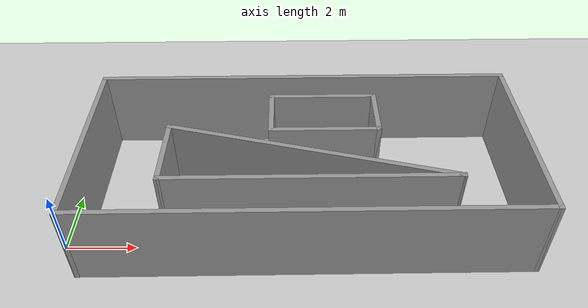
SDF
<sdf version="1.7">
 <world name="default">
  <light name="sun" type="directional">
   <pose>0 0 10 0 -0 0</pose>
   <diffuse>0.8 0.8 0.8 1</diffuse>
   <specular>0.2 0.2 0.2 1</specular>
   <attenuation>
    <range>1000</range>
    <constant>0.9</constant>
    <linear>0.01</linear>
    <quadratic>0.001</quadratic>
   </attenuation>
   <direction>-0.5 0.1 -0.9</direction>
   <spot><inner_angle>0</inner_angle><outer_angle>0</outer_angle><falloff>0</falloff></spot>
  </light>
  <model name="ground_plane">
   <static>1</static>
   <link name="link">
    <collision name="collision">
     <geometry><plane><normal>0 0 1</normal><size>100 100</size></plane></geometry>
     <surface><friction><ode><mu>100</mu><mu2>50</mu2></ode></friction></surface>
    </collision>
    <visual name="visual">
     <cast_shadows>0</cast_shadows>
     <geometry><plane><normal>0 0 1</normal><size>100 100</size></plane></geometry>
     <material>
      <script><uri>file://media/materials/scripts/gazebo.material</uri><name>Gazebo/Grey</name></script>
     </material>
    </visual>
   </link>
  </model>
  <gravity>0 0 -9.8</gravity>
  <magnetic_field>6e-06 2.3e-05 -4.2e-05</magnetic_field>
  <atmosphere type="adiabatic"/>
  <physics type="ode">
   <max_step_size>0.001</max_step_size>
   <real_time_factor>1</real_time_factor>
   <real_time_update_rate>1000</real_time_update_rate>
  </physics>
  <scene><ambient>0.4 0.4 0.4 1</ambient><background>0.7 0.7 0.7 1</background><shadows>1</shadows></scene>
  <audio><device>default</device></audio>
  <spherical_coordinates>
   <surface_model>EARTH_WGS84</surface_model>
   <latitude_deg>0</latitude_deg>
   <longitude_deg>0</longitude_deg>
   <elevation>0</elevation>
   <heading_deg>0</heading_deg>
  </spherical_coordinates>
  <model name="labirint2">
   <pose>6.86557 2.38647 0 0 -0 0</pose>
   <link name="Wall_0">
    <collision name="Wall_0_Collision">
     <geometry><box><size>6 0.15 2.5</size></box></geometry>
     <pose>0 0 1.25 0 -0 0</pose>
    </collision>
    <visual name="Wall_0_Visual">
     <pose>0 0 1.25 0 -0 0</pose>
     <geometry><box><size>6 0.15 2.5</size></box></geometry>
     <material>
      <script><uri>file://media/materials/scripts/gazebo.material</uri><name>Gazebo/Grey</name></script>
      <ambient>1 1 1 1</ambient>
     </material>
     <meta><layer>0</layer></meta>
    </visual>
    <pose>-6.3 -0.4175 0 0 -0 -1.5708</pose>
   </link>
   <link name="Wall_1">
    <collision name="Wall_1_Collision">
     <geometry><box><size>12.75 0.15 2.5</size></box></geometry>
     <pose>0 0 1.25 0 -0 0</pose>
    </collision>
    <visual name="Wall_1_Visual">
     <pose>0 0 1.25 0 -0 0</pose>
     <geometry><box><size>12.75 0.15 2.5</size></box></geometry>
     <material>
      <script><uri>file://media/materials/scripts/gazebo.material</uri><name>Gazebo/Grey</name></script>
      <ambient>1 1 1 1</ambient>
     </material>
     <meta><layer>0</layer></meta>
    </visual>
    <pose>0 -3.3425 0 0 -0 0</pose>
   </link>
   <link name="Wall_10">
    <collision name="Wall_10_Collision">
     <geometry><box><size>3.25 0.15 2.5</size></box></geometry>
     <pose>0 0 1.25 0 -0 0</pose>
    </collision>
    <visual name="Wall_10_Visual">
     <pose>0 0 1.25 0 -0 0</pose>
     <geometry><box><size>3.25 0.15 2.5</size></box></geometry>
     <material>
      <script><uri>file://media/materials/scripts/gazebo.material</uri><name>Gazebo/Grey</name></script>
      <ambient>1 1 1 1</ambient>
     </material>
     <meta><layer>0</layer></meta>
    </visual>
    <pose>0.56 -0.1525 0 0 -0 0</pose>
   </link>
   <link name="Wall_11">
    <collision name="Wall_11_Collision">
     <geometry><box><size>1.75 0.15 2.5</size></box></geometry>
     <pose>0 0 1.25 0 -0 0</pose>
    </collision>
    <visual name="Wall_11_Visual">
     <pose>0 0 1.25 0 -0 0</pose>
     <geometry><box><size>1.75 0.15 2.5</size></box></geometry>
     <material>
      <script><uri>file://media/materials/scripts/gazebo.material</uri><name>Gazebo/Grey</name></script>
      <ambient>1 1 1 1</ambient>
     </material>
     <meta><layer>0</layer></meta>
    </visual>
    <pose>2.11 0.6475 0 0 -0 1.5708</pose>
   </link>
   <link name="Wall_12">
    <collision name="Wall_12_Collision">
     <geometry><box><size>3.25 0.15 2.5</size></box></geometry>
     <pose>0 0 1.25 0 -0 0</pose>
    </collision>
    <visual name="Wall_12_Visual">
     <pose>0 0 1.25 0 -0 0</pose>
     <geometry><box><size>3.25 0.15 2.5</size></box></geometry>
     <material>
      <script><uri>file://media/materials/scripts/gazebo.material</uri><name>Gazebo/Grey</name></script>
      <ambient>1 1 1 1</ambient>
     </material>
     <meta><layer>0</layer></meta>
    </visual>
    <pose>0.56 1.4475 0 0 -0 3.14159</pose>
   </link>
   <link name="Wall_2">
    <collision name="Wall_2_Collision">
     <geometry><box><size>6 0.15 2.5</size></box></geometry>
     <pose>0 0 1.25 0 -0 0</pose>
    </collision>
    <visual name="Wall_2_Visual">
     <pose>0 0 1.25 0 -0 0</pose>
     <geometry><box><size>6 0.15 2.5</size></box></geometry>
     <material>
      <script><uri>file://media/materials/scripts/gazebo.material</uri><name>Gazebo/Grey</name></script>
      <ambient>1 1 1 1</ambient>
     </material>
     <meta><layer>0</layer></meta>
    </visual>
    <pose>6.3 -0.4175 0 0 -0 1.5708</pose>
   </link>
   <link name="Wall_3">
    <collision name="Wall_3_Collision">
     <geometry><box><size>12.75 0.15 2.5</size></box></geometry>
     <pose>0 0 1.25 0 -0 0</pose>
    </collision>
    <visual name="Wall_3_Visual">
     <pose>0 0 1.25 0 -0 0</pose>
     <geometry><box><size>12.75 0.15 2.5</size></box></geometry>
     <material>
      <script><uri>file://media/materials/scripts/gazebo.material</uri><name>Gazebo/Grey</name></script>
      <ambient>1 1 1 1</ambient>
     </material>
     <meta><layer>0</layer></meta>
    </visual>
    <pose>0 2.5075 0 0 -0 3.14159</pose>
   </link>
   <link name="Wall_5">
    <collision name="Wall_5_Collision">
     <geometry><box><size>8.25 0.15 2.5</size></box></geometry>
     <pose>0 0 1.25 0 -0 0</pose>
    </collision>
    <visual name="Wall_5_Visual">
     <pose>0 0 1.25 0 -0 0</pose>
     <geometry><box><size>8.25 0.15 2.5</size></box></geometry>
     <material>
      <script><uri>file://media/materials/scripts/gazebo.material</uri><name>Gazebo/Grey</name></script>
      <ambient>1 1 1 1</ambient>
     </material>
     <meta><layer>0</layer></meta>
    </visual>
    <pose>0.09 -2.1325 0 0 -0 0</pose>
   </link>
   <link name="Wall_6">
    <collision name="Wall_6_Collision">
     <geometry><box><size>8.5 0.15 2.5</size></box></geometry>
     <pose>0 0 1.25 0 -0 0</pose>
    </collision>
    <visual name="Wall_6_Visual">
     <pose>0 0 1.25 0 -0 0</pose>
     <geometry><box><size>8.5 0.15 2.5</size></box></geometry>
     <material>
      <script><uri>file://media/materials/scripts/gazebo.material</uri><name>Gazebo/Grey</name></script>
      <ambient>1 1 1 1</ambient>
     </material>
     <meta><layer>0</layer></meta>
    </visual>
    <pose>0.10726 -1.05193 0 0 -0 2.87979</pose>
   </link>
   <link name="Wall_7">
    <collision name="Wall_7_Collision">
     <geometry><box><size>2.31142 0.15 2.5</size></box></geometry>
     <pose>0 0 1.25 0 -0 0</pose>
    </collision>
    <visual name="Wall_7_Visual">
     <pose>0 0 1.25 0 -0 0</pose>
     <geometry><box><size>2.31142 0.15 2.5</size></box></geometry>
     <material>
      <script><uri>file://media/materials/scripts/gazebo.material</uri><name>Gazebo/Grey</name></script>
      <ambient>1 1 1 1</ambient>
     </material>
     <meta><layer>0</layer></meta>
    </visual>
    <pose>-3.94274 -1.05193 0 0 -0 -1.58677</pose>
   </link>
   <link name="Wall_9">
    <collision name="Wall_9_Collision">
     <geometry><box><size>1.75 0.15 2.5</size></box></geometry>
     <pose>0 0 1.25 0 -0 0</pose>
    </collision>
    <visual name="Wall_9_Visual">
     <pose>0 0 1.25 0 -0 0</pose>
     <geometry><box><size>1.75 0.15 2.5</size></box></geometry>
     <material>
      <script><uri>file://media/materials/scripts/gazebo.material</uri><name>Gazebo/Grey</name></script>
      <ambient>1 1 1 1</ambient>
     </material>
     <meta><layer>0</layer></meta>
    </visual>
    <pose>-0.99 0.6475 0 0 -0 -1.5708</pose>
   </link>
   <static>1</static>
  </model>
 </world>
</sdf>
